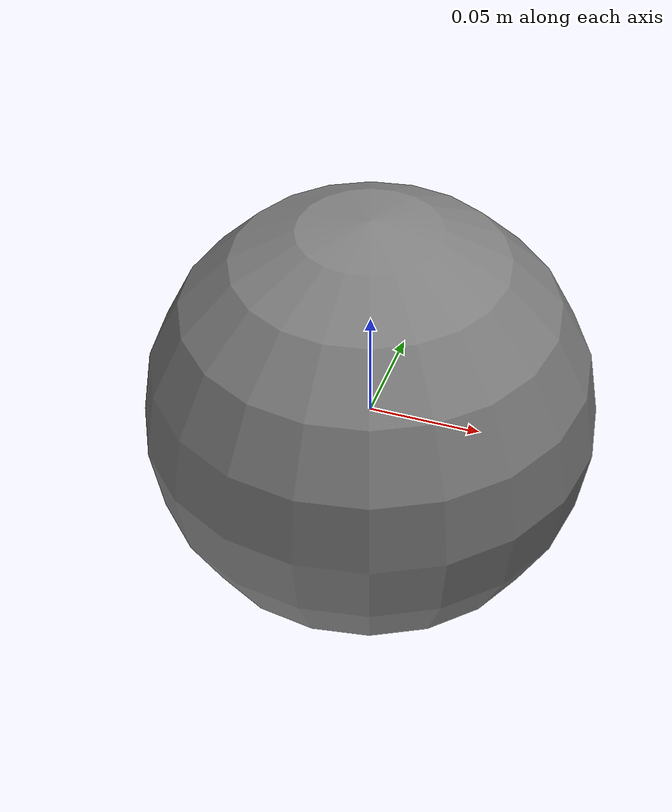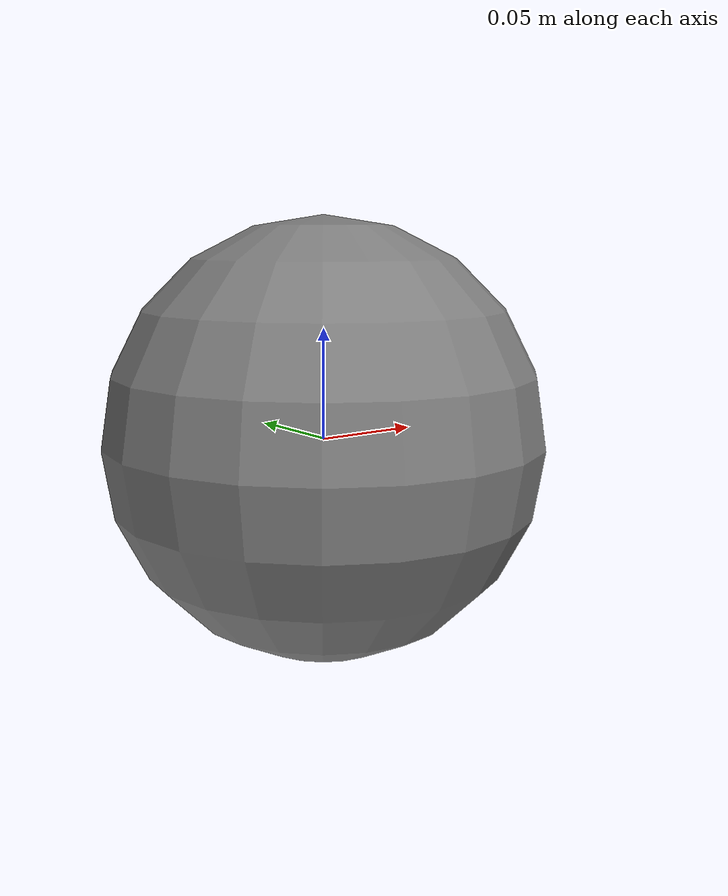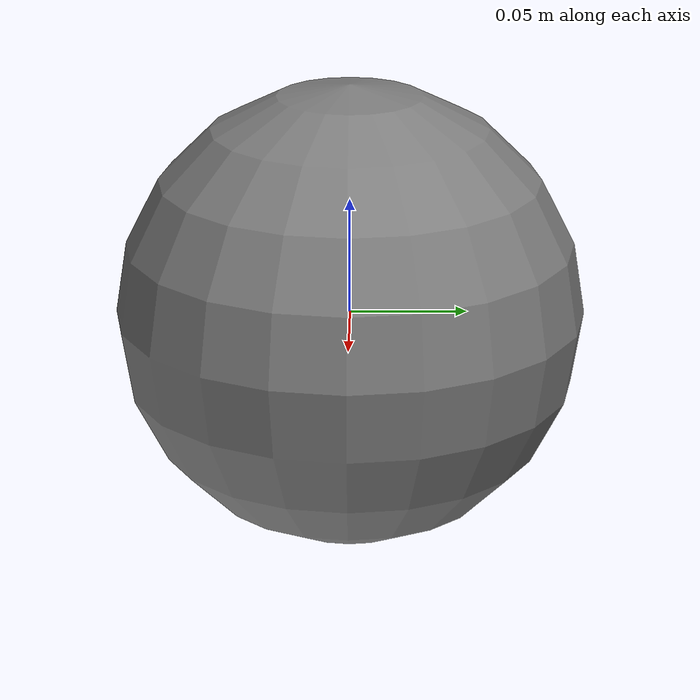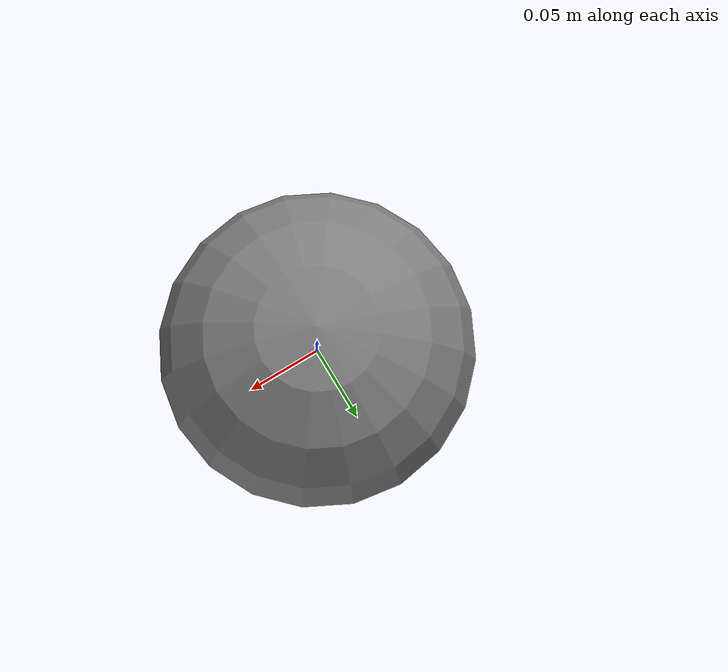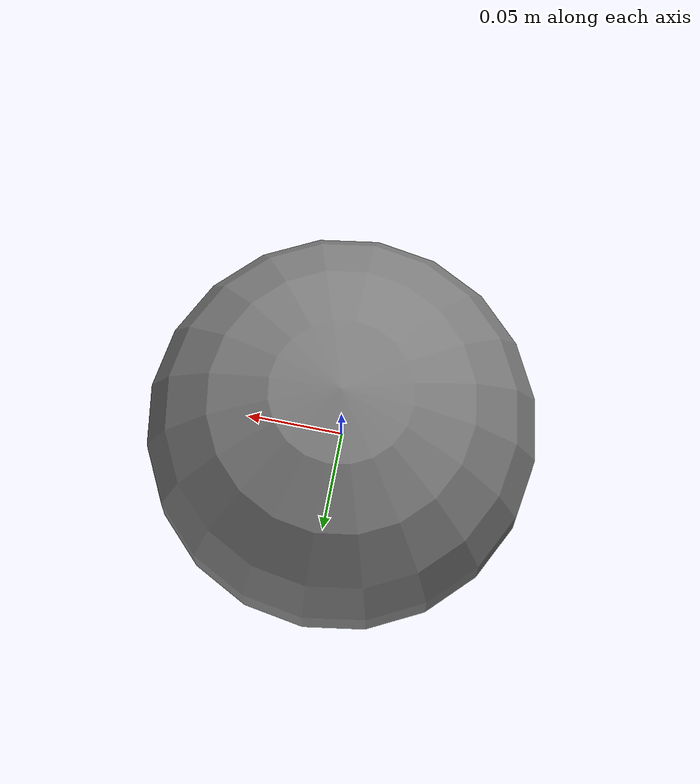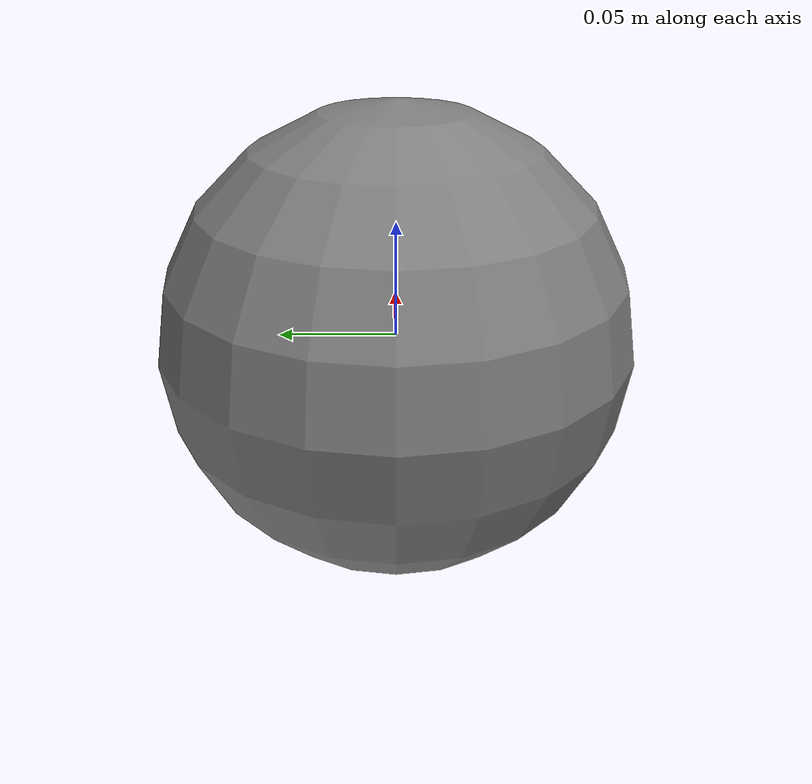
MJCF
<mujoco model="spec_d_t09a">
            <worldbody>
                <body>
                    <joint type="hinge" name="j1"/>
                    <joint type="hinge" name="j2"/>
                    <geom size="0.1"/>
                    <site name="s1"/>
                </body>
            </worldbody>
            <sensor>
                <jointpos name="sp1" joint="j1" nsample="3"/>
                <jointpos name="sp2" joint="j2" nsample="5"/>
                <framepos name="fp" site="s1" nsample="2"/>
            </sensor>
        </mujoco>
